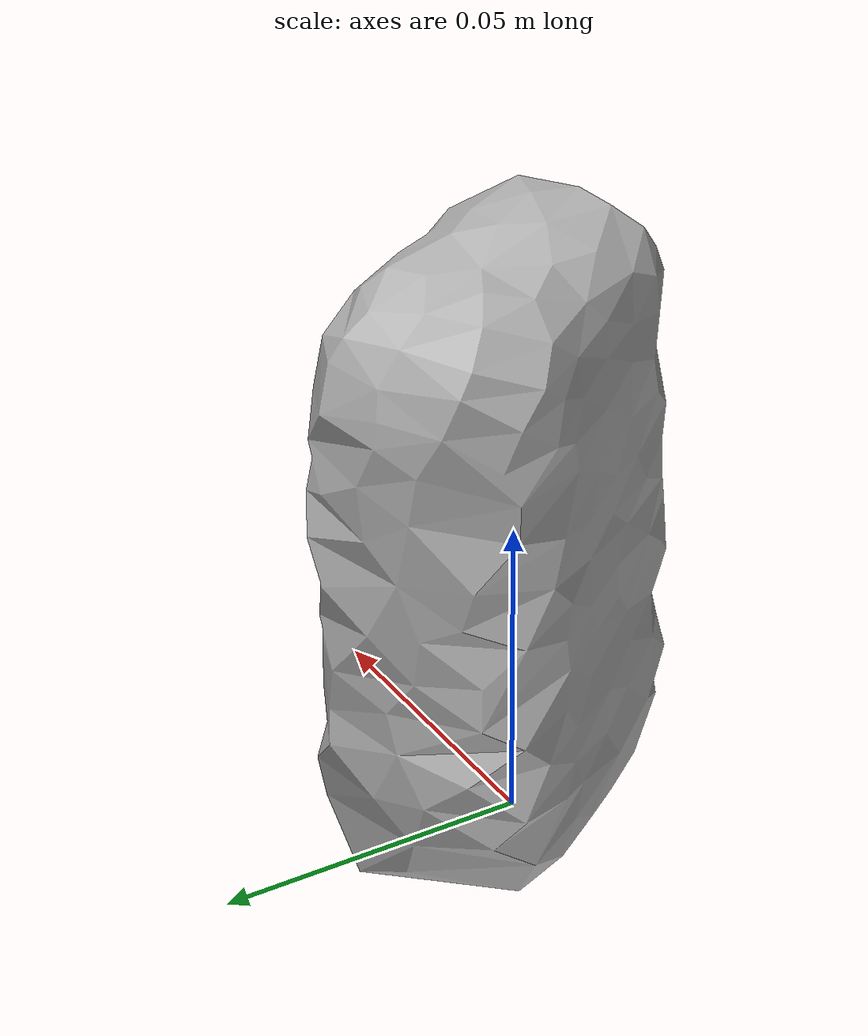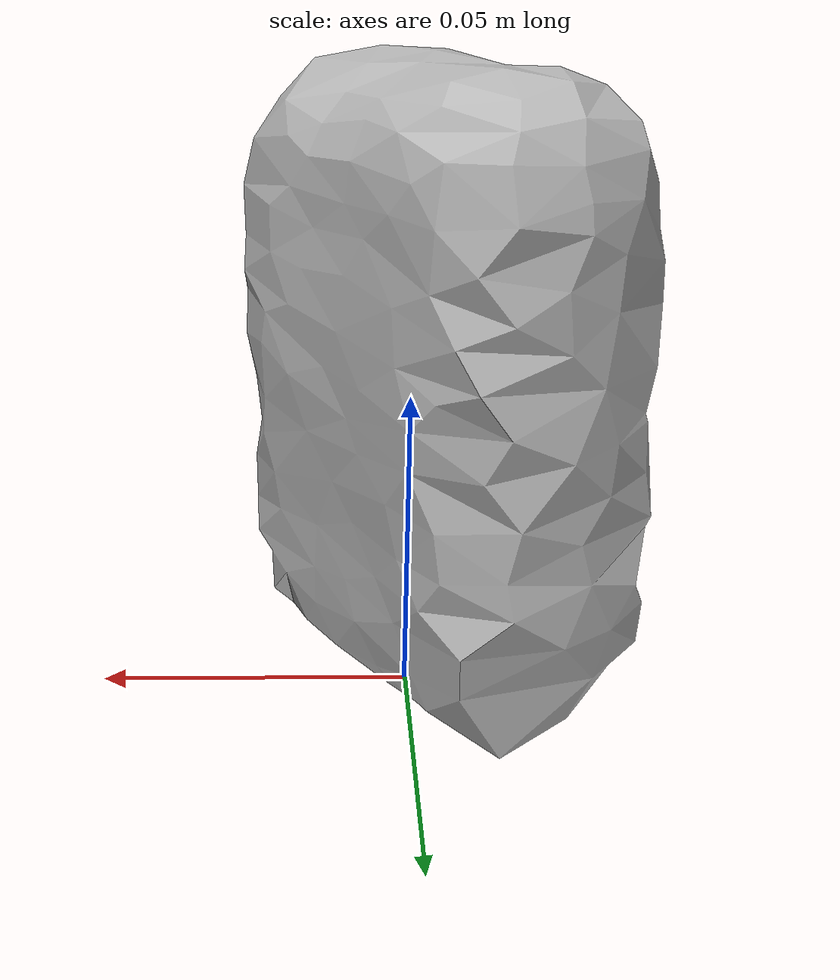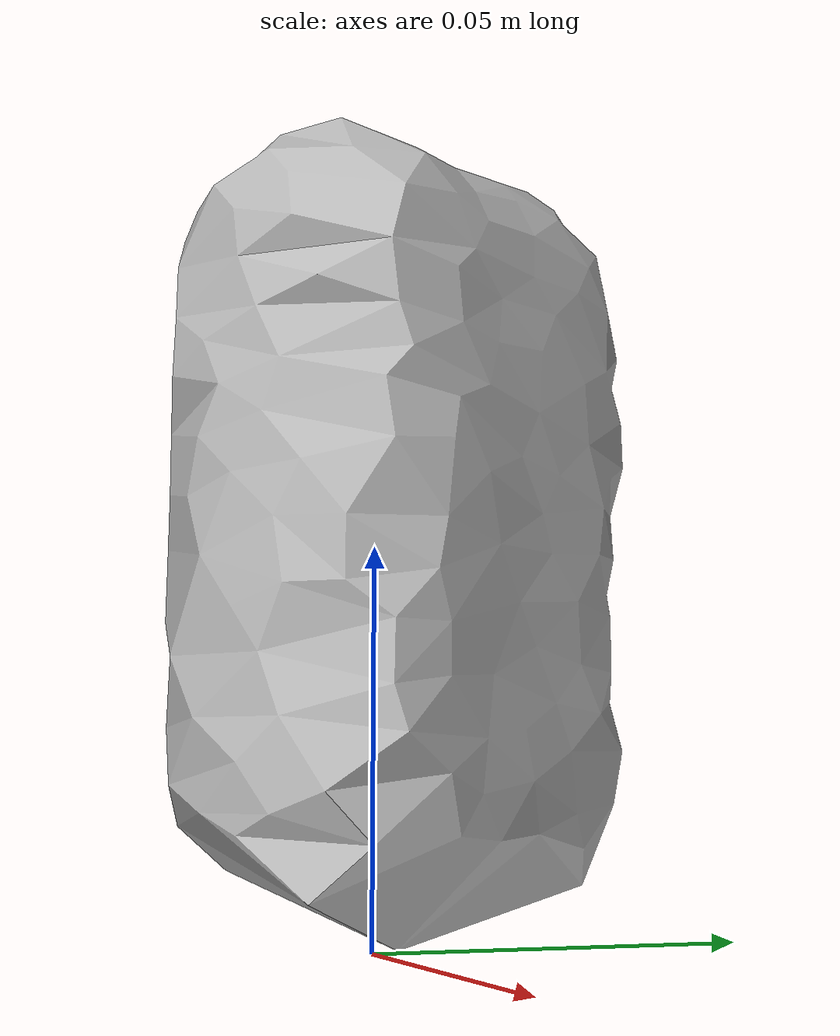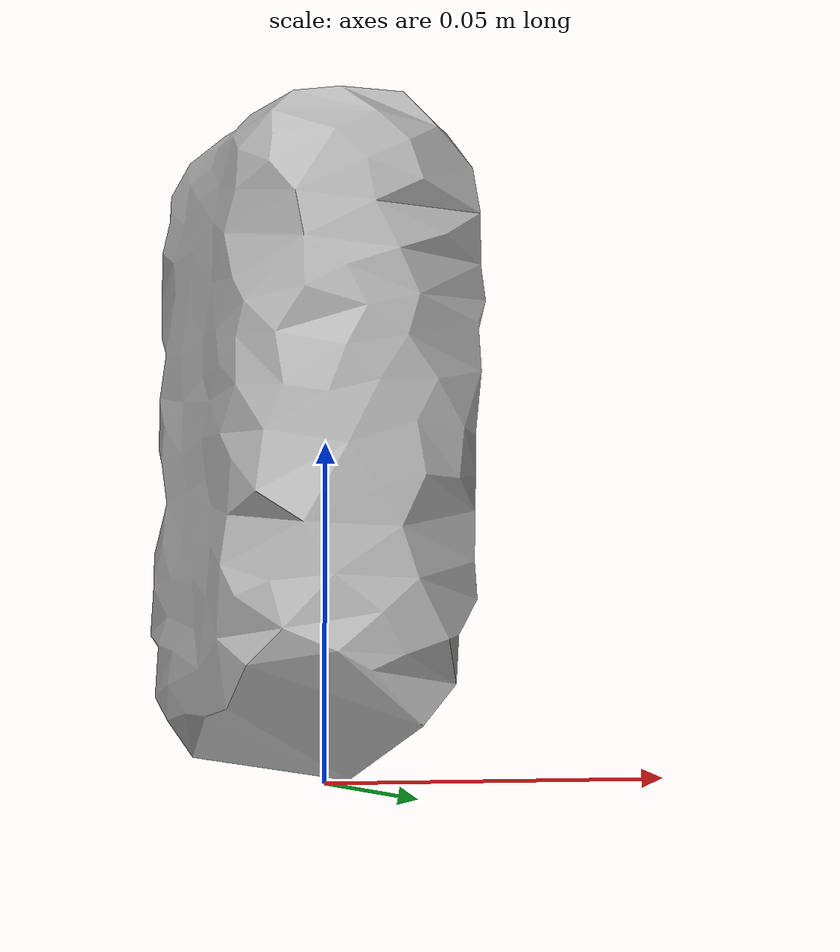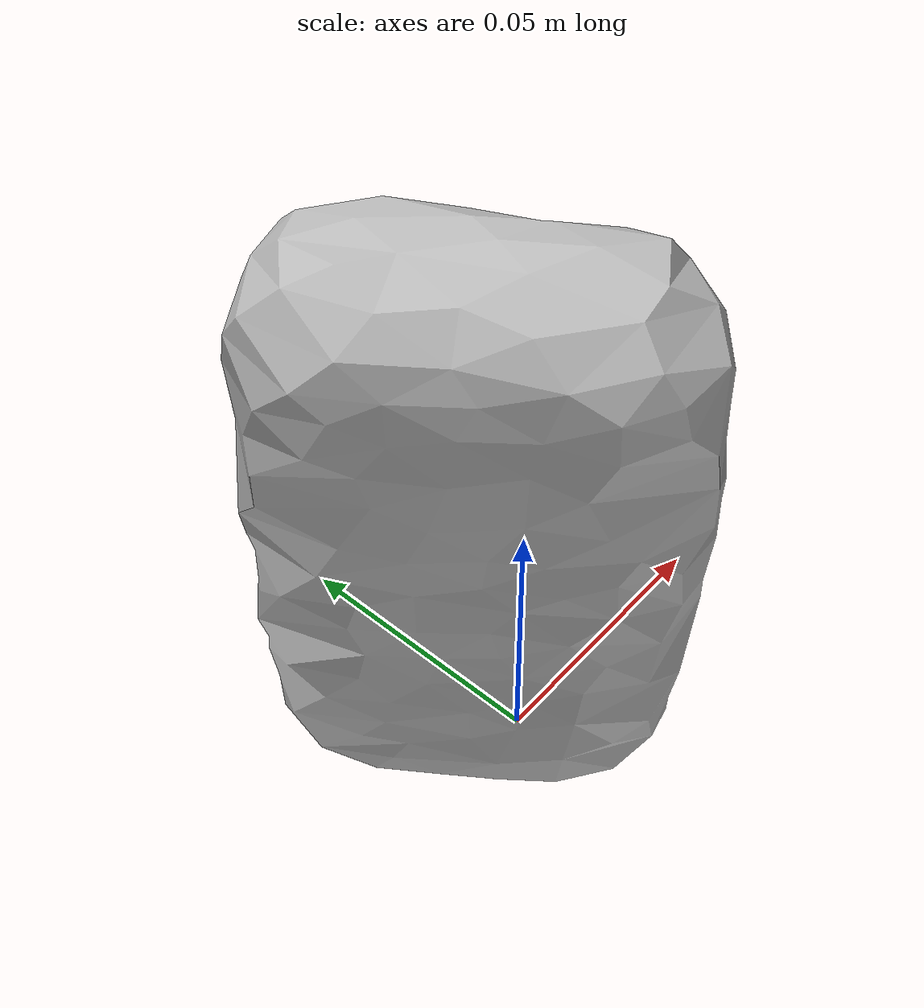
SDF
<?xml version="1.0" ?>
<sdf version="1.4">
  <model name="soap2">
    <link name="soap2_link">
      <inertial>
        <pose>0 0 0 0 0 0</pose>
        <mass>0.08</mass>
      </inertial>

      <visual name="soap2_visual">
        <pose>0 0 0 0 0 0</pose>
        <material>
          <script>
            <uri>model://soap2/materials/scripts</uri>
            <uri>model://soap2/materials/textures</uri>
            <name>soap2</name>
          </script>
        </material>
        <geometry>
          <mesh>
            <uri>model://soap2/meshes/soap2.dae</uri>
          </mesh>
        </geometry>
      </visual>

      <collision name="soap2_collision">
        <pose>0 0 0 0 0 0</pose>
        <geometry>
          <mesh>
            <uri>model://soap2/meshes/soap2.dae</uri>
          </mesh>
        </geometry>
        <surface>
          <friction>
            <ode>
              <mu>0.8</mu>
              <mu2>0.8</mu2>
            </ode>
          </friction>
        </surface>
      </collision>

    </link>
  </model>
</sdf>
